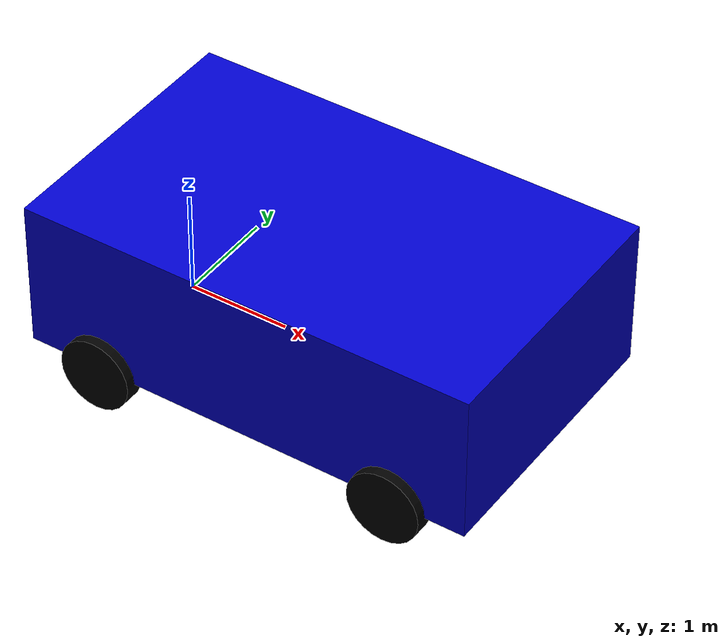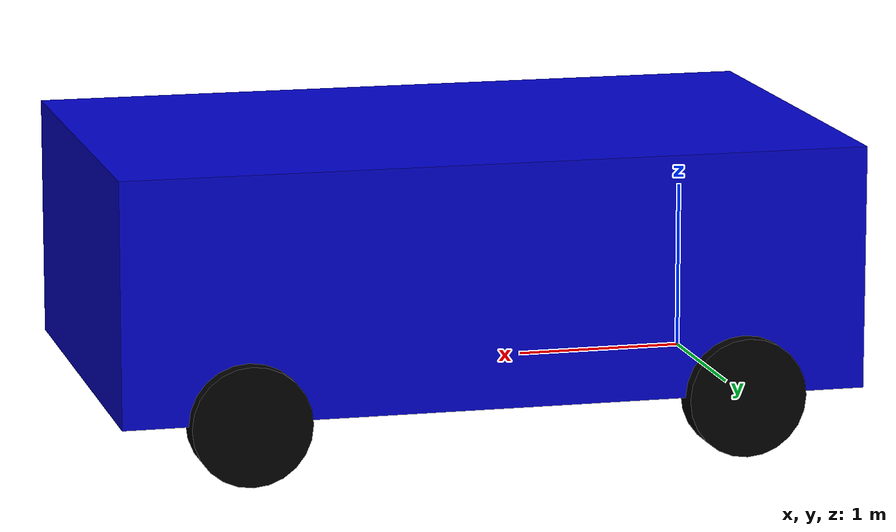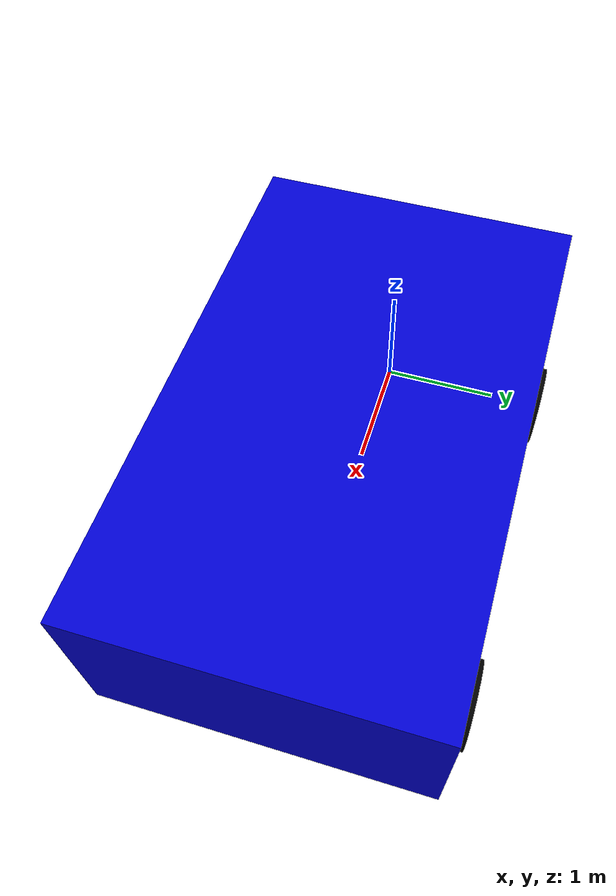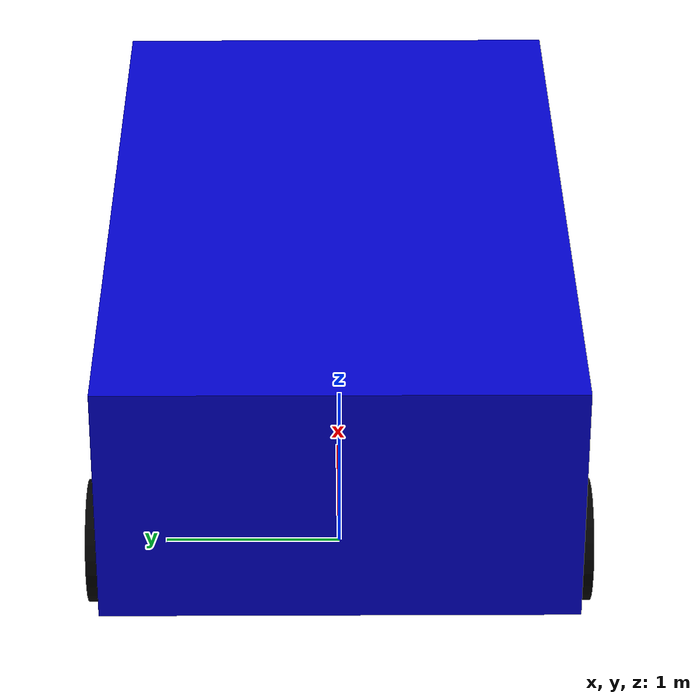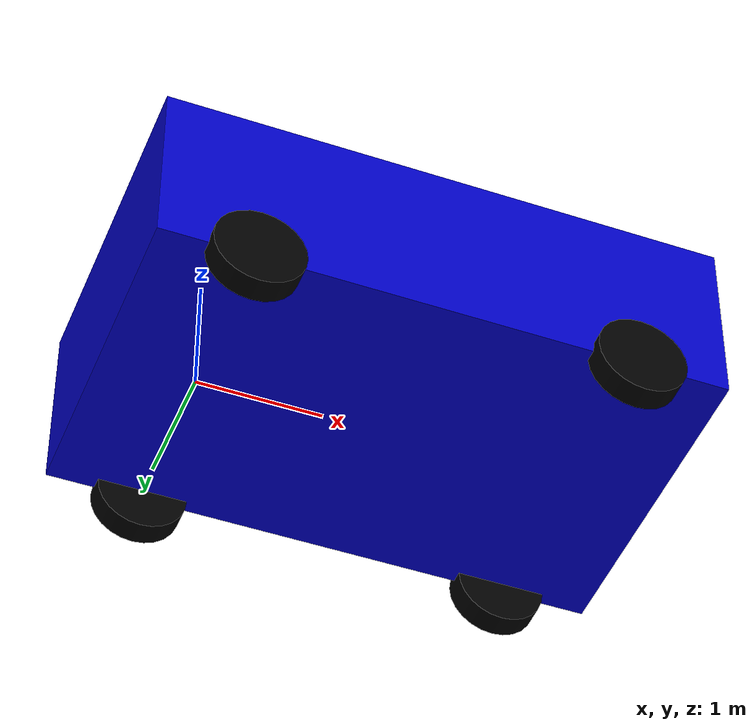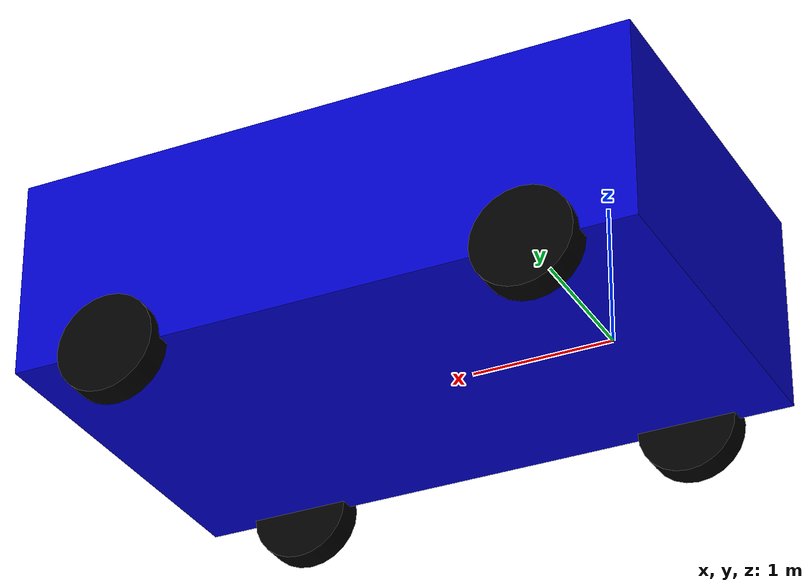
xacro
<?xml version="1.0"?>
<robot name="ackermann" xmlns:xacro="http://ros.org/wiki/xacro">

  <!-- Dimensions taken 2019 from Chevy Cruze https://www.caranddriver.com/chevrolet/cruze/specs -->

  <!-- Mass in kilograms -->
  <xacro:property name="chassis_mass" value="1351" />
  <xacro:property name="wheel_mass" value="11" />
  <!-- Length in meters -->
  <xacro:property name="chassis_length" value="4.45" />
  <xacro:property name="chassis_width" value="2.7" />
  <xacro:property name="chassis_height" value="1.45" />
  <xacro:property name="wheel_radius" value="${0.7112 / 2}" />
  <xacro:property name="wheel_depth" value="0.2" />
  <xacro:property name="lon_dist_between_wheels" value="${chassis_length*2/3}" />

  <!-- Material colors -->
  <material name="blue">
    <color rgba="0 0 0.8 1"/>
  </material>

  <material name="black">
    <color rgba="0 0 0 1"/>
  </material>

  <material name="white">
    <color rgba="1 1 1 1"/>
  </material>

  <!-- Moment of inertia formulas gotten from wikipedia: https://en.wikipedia.org/wiki/List_of_moments_of_inertia#List_of_3D_inertia_tensors -->
  <xacro:macro name="solid_cylinder_inertial" params="mass r d">
    <inertial>
      <mass value="${mass}" />
      <inertia  ixx="${(1/12)*mass*(3*r*r + d*d)}" ixy="0.0" ixz="0.0" iyy="${(1/2)*mass*r*r}" iyz="0.0" izz="${(1/12)*mass*(3*r*r + d*d)}" />
    </inertial>
  </xacro:macro>

  <xacro:macro name="box_inertial" params="mass h w l">
    <inertial>
      <mass value="${mass}" />
      <inertia ixx="${(1/12)*mass*(w*w + h*h)}" ixy="0.0" ixz="0.0" iyy="${(1/12)*mass*(h*h + l*l)}" iyz="0.0" izz="${(1/12)*mass*(w*w + l*l)}"/>
    </inertial>
  </xacro:macro>

  <!-- Base link should not have inertia -->
  <link name="base_link"/>

  <joint name="base_link_connection" type="fixed">
    <parent link="base_link"/>
    <child link="chassis"/>
    <origin xyz="${lon_dist_between_wheels/2} 0 ${chassis_height/2}" rpy="0 0 0"/>
    <axis xyz="1 0 0"/>
  </joint>

  <!-- Vehicle chassis -->
  <link name="chassis">
    <visual>
      <geometry>
        <box size="${chassis_length} ${chassis_width} ${chassis_height}"/>
      </geometry>
      <material name="blue"/>
    </visual>
    <collision>
      <geometry>
        <box size="${chassis_length} ${chassis_width} ${chassis_height}"/>
      </geometry>
    </collision>
    <xacro:box_inertial mass="${chassis_mass}" h="${chassis_height}" w="${chassis_width}" l="${chassis_length}"/>
  </link>

  <!-- xacro for wheels -->
  <xacro:macro name="wheel" params="side location steer">
    <link name="${location}_${side}_wheel">
      <visual>
        <origin xyz="0 0 0" rpy="${pi/2} 0 0" />
        <geometry>
          <cylinder radius="${wheel_radius}" length="${wheel_depth}"/>
        </geometry>
        <material name="black"/>
      </visual>
      <collision>
        <origin xyz="0 0 0" rpy="${pi/2} 0 0" />
        <geometry>
          <cylinder radius="${wheel_radius}" length="${wheel_depth}"/>
        </geometry>
      </collision>
      <xacro:solid_cylinder_inertial mass="${wheel_mass}" r="${wheel_radius}" d="${wheel_depth}"/>
    </link>

    <joint name="${location}_${side}_wheel_velocity_joint" type="continuous">
      <axis xyz="0 1 0" rpy="0 0 0" />
      <parent link="${location}_${side}_linkage"/>
      <child link="${location}_${side}_wheel"/>
      <origin xyz="0 0 0" rpy="0 0 0"/>
    </joint>

    <!-- This block provides the simulator (Gazebo) with information on a few additional
    physical properties. See http://gazebosim.org/tutorials/?tut=ros_urdf for more-->
    <gazebo reference="${location}_${side}_wheel">
      <mu1>0.9</mu1>
      <mu2>0.9</mu2>
      <minDepth>0.005</minDepth>
      <kp>1e8</kp>
      <material>Gazebo/Grey</material>
    </gazebo>
  </xacro:macro>

  <!-- xacro for linkages -->
  <xacro:macro name="linkage" params="location lon side lat steer">

    <link name="${location}_${side}_linkage">
      <visual>
        <origin xyz="0 0 0" rpy="${pi/2} 0 0" />
        <geometry>
          <cylinder radius=".05" length=".05"/>
        </geometry>
        <material name="white"/>
      </visual>
      <xacro:solid_cylinder_inertial mass="10" r=".1" d="${chassis_width/2}"/>
    </link>

    <xacro:if value="${steer}">
      <joint name="${location}_${side}_steer_joint" type="continuous">
        <axis xyz="0 0 1" rpy="0 0 0" />
        <parent link="chassis"/>
        <child link="${location}_${side}_linkage"/>
        <origin xyz="${lon_dist_between_wheels*lon/2} ${chassis_width*lat/2} -${chassis_height/2}" rpy="0 0 0"/>
      </joint>
    </xacro:if>

    <xacro:unless value="${steer}">
      <joint name="${location}_${side}_axel_joint" type="fixed">
        <axis xyz="0 0 1" rpy="0 0 0" />
        <parent link="chassis"/>
        <child link="${location}_${side}_linkage"/>
        <origin xyz="${lon_dist_between_wheels*lon/2} ${chassis_width*lat/2} -${chassis_height/2}" rpy="0 0 0"/>
      </joint>
    </xacro:unless>

    <xacro:wheel side="${side}" location="${location}" steer="${steer}"/>

  </xacro:macro>

  <xacro:linkage location="front" lon="1" side="left" lat="1" steer="true"/>
  <xacro:linkage location="front" lon="1" side="right" lat="-1" steer="true"/>
  <xacro:linkage location="back" lon="-1" side="left" lat="1" steer="false"/>
  <xacro:linkage location="back" lon="-1" side="right" lat="-1" steer="false"/>

  <!-- Specify Gazebo Plugins to be used in model -->
  <gazebo>
    <!-- Gazebo plugin for ROS Control -->
    <plugin name="gazebo_ros_control" filename="libgazebo_ros_control.so">
      <robotNamespace>/</robotNamespace>
    </plugin>

    <plugin name="ackermann_control_plugin" filename="libAckermannControlPlugin.so">
      <max_speed>35.7632</max_speed>
      <wheel_angular_velocity_p_gain>1e5</wheel_angular_velocity_p_gain>
      <wheel_angular_velocity_i_gain>0</wheel_angular_velocity_i_gain>
      <wheel_angular_velocity_d_gain>1e3</wheel_angular_velocity_d_gain>
      <wheel_steering_angle_p_gain>1e4</wheel_steering_angle_p_gain>
      <wheel_steering_angle_i_gain>0</wheel_steering_angle_i_gain>
      <wheel_steering_angle_d_gain>1e3</wheel_steering_angle_d_gain>
      <longitudinal_length_between_wheels>${lon_dist_between_wheels}</longitudinal_length_between_wheels>
      <lateral_width_between_wheels>${chassis_width}</lateral_width_between_wheels>
      <wheel_radius>${wheel_radius}</wheel_radius>
      <chassis_height>${chassis_height}</chassis_height>
    </plugin>
  </gazebo>

</robot>
